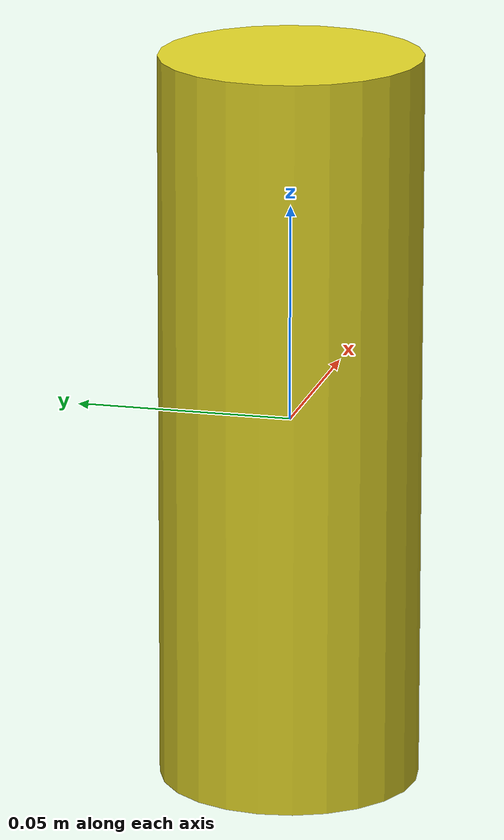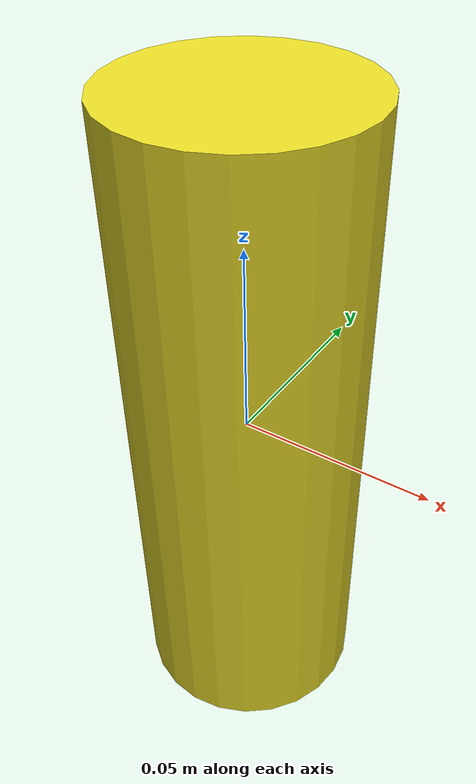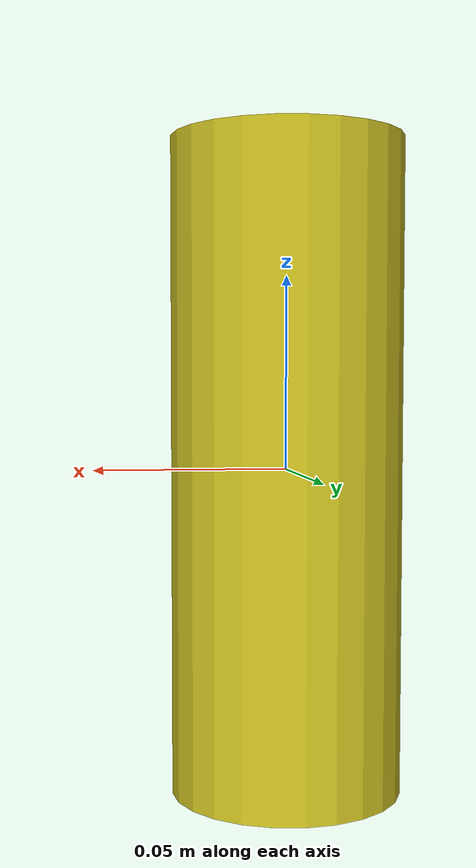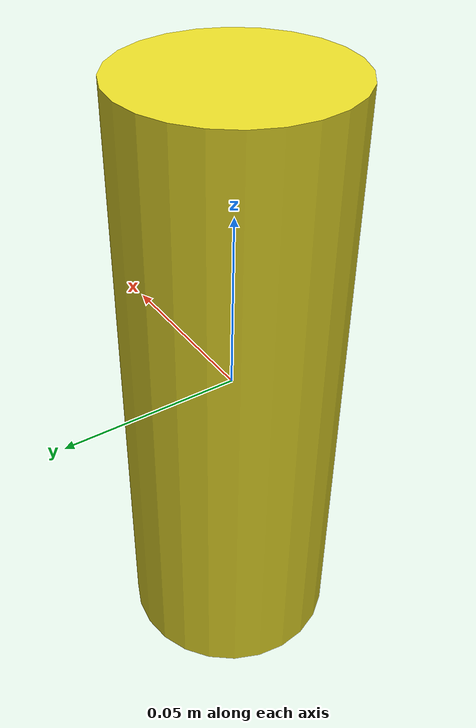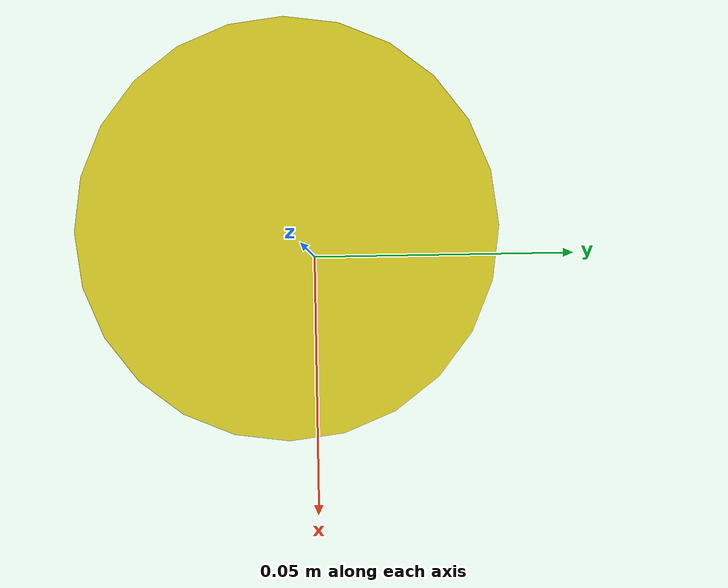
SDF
<?xml version="1.0" ?>
<sdf version="1.5">
  <model name="monster">
  	<static>false</static>
  	<link name="link">
      <inertial>
        <pose>0 0 0 0 0 0</pose>
        <!-- volume about 0.0085 m^3, density 2000 kg/m^3 -->
        <mass>5</mass>
        <!-- approximate as uniform box 0.37 x 0.17 x 0.20 m -->
        <inertia>
          <ixx>0.07</ixx>
          <ixy>0.0000</ixy>
          <iyy>0.07</iyy>
          <ixz>0.0000</ixz>
          <iyz>0.0000</iyz>
          <izz>0.07</izz>
        </inertia>
      </inertial>
      <collision name="collision">
        <geometry>
          <cylinder>
            <radius>0.03</radius>
            <length>0.17</length>
          </cylinder>
        </geometry>
        <surface>
          <contact>
            <ode>
              <max_vel>0.1</max_vel>
              <min_depth>0.001</min_depth>
            </ode>
          </contact>
          <friction>
          	<ode>
          	  <mu>100</mu>
          	  <mu2>50</mu2>
          	</ode>
          </friction>
        </surface>
      </collision>
      <visual name="visual">
        <geometry>
          <cylinder>
            <radius>0.03</radius>
            <length>0.17</length>
          </cylinder>
        </geometry>
        <material>
          <script>
          	<uri>file://media/materials/scripts/gazebo.material</uri>
          	<name>Gazebo/Yellow</name>
          </script>
        </material>
      </visual>z
    </link>
  </model>
</sdf>
